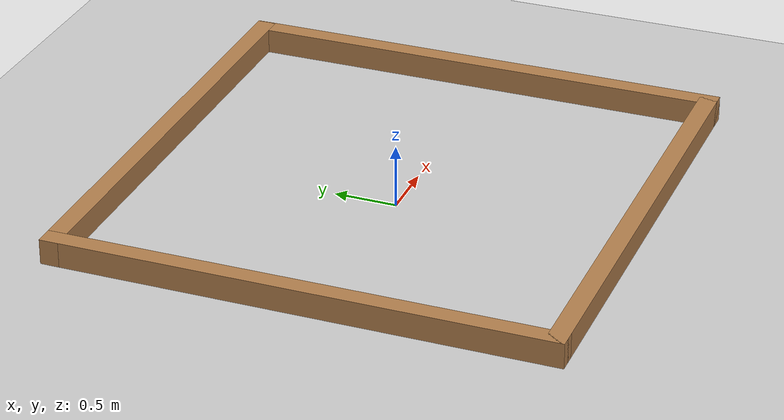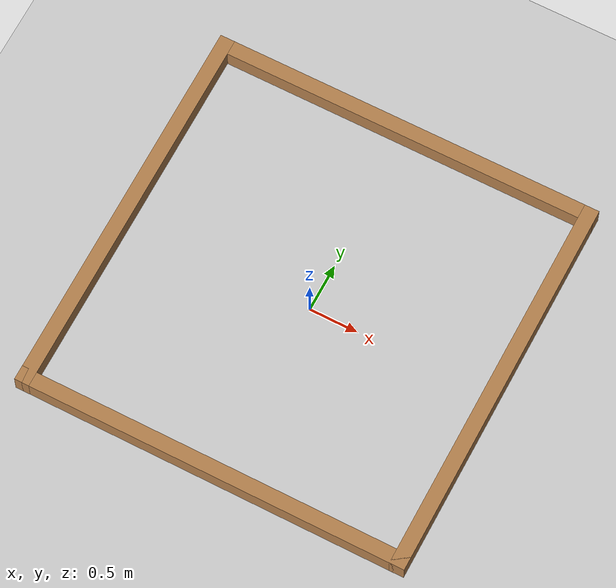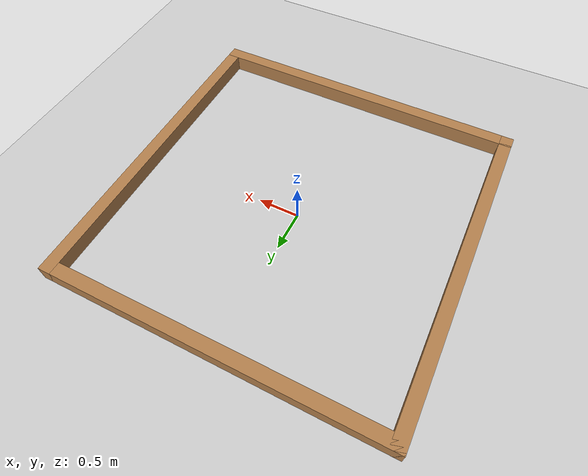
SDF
<sdf version='1.4'>
  <world name='default'>

    <!-- A global light source -->
    <include>
      <uri>model://sun</uri>
    </include>

    <!-- A ground plane -->
    <include>
      <uri>model://ground_plane</uri>
    </include>

    <include>
      <name> turtlebot3_square </name>
      <uri>model://turtlebot3_square</uri>
      <pose>0 0 0 0 0 0</pose>
    </include>

    <scene>
      <ambient>0.4 0.4 0.4 1</ambient>
      <background>0.7 0.7 0.7 1</background>
      <shadows>true</shadows>
    </scene>

    <gui fullscreen='0'>
      <camera name='user_camera'>
        <pose>0.8 0.0 12.0 0 1.5708 0</pose>
        <view_controller>orbit</view_controller>
      </camera>
    </gui>

  </world>
</sdf>

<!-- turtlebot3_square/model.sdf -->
<sdf version='1.6'>
  <model name='turtlebot3_square'>
    <pose frame=''>0 0 0 0 -0 0</pose>

    <link name='Wall_0'>
      <collision name='Wall_0_Collision'>
        <geometry>
          <box>
            <size>4 0.15 0.2</size>
          </box>
        </geometry>
        <pose frame=''>0 0 0.25 0 -0 0</pose>
      </collision>
      <visual name='Wall_0_Visual'>
        <pose frame=''>0 0 0.25 0 -0 0</pose>
        <geometry>
          <box>
            <size>4 0.15 0.2</size>
          </box>
        </geometry>
        <material>
          <script>
            <uri>models://materials/scripts/square.material</uri>
            <name>Gazebo/Wood</name>
          </script>
          <ambient>1 1 1 1</ambient>
        </material>
      </visual>
      <pose frame=''>0 1.925 0 0 -0 0</pose>
    </link>

    <link name='Wall_2'>
      <collision name='Wall_2_Collision'>
        <geometry>
          <box>
            <size>4 0.15 0.2</size>
          </box>
        </geometry>
        <pose frame=''>0 0 0.25 0 -0 0</pose>
      </collision>
      <visual name='Wall_2_Visual'>
        <pose frame=''>0 0 0.25 0 -0 0</pose>
        <geometry>
          <box>
            <size>4 0.15 0.2</size>
          </box>
        </geometry>
        <material>
          <script>
            <uri>models://materials/scripts/square.material</uri>
            <name>Gazebo/Wood</name>
          </script>
          <ambient>1 1 1 1</ambient>
        </material>
      </visual>
      <pose frame=''>-1.925 0 0 0 0 -1.5708</pose>
    </link>

    <link name='Wall_3'>
      <collision name='Wall_3_Collision'>
        <geometry>
          <box>
            <size>4 0.15 0.2</size>
          </box>
        </geometry>
        <pose frame=''>0 0 0.25 0 -0 0</pose>
      </collision>
      <visual name='Wall_3_Visual'>
        <pose frame=''>0 0 0.25 0 -0 0</pose>
        <geometry>
          <box>
            <size>4 0.15 0.2</size>
          </box>
        </geometry>
        <material>
          <script>
            <uri>models://materials/scripts/square.material</uri>
            <name>Gazebo/Wood</name>
          </script>
          <ambient>1 1 1 1</ambient>
        </material>
      </visual>
      <pose frame=''>0 -1.925 0 0 -0 0</pose>
    </link>

    <link name='Wall_4'>
      <collision name='Wall_4_Collision'>
        <geometry>
          <box>
            <size>4 0.15 0.2</size>
          </box>
        </geometry>
        <pose frame=''>0 0 0.25 0 -0 0</pose>
      </collision>
      <visual name='Wall_4_Visual'>
        <pose frame=''>0 0 0.25 0 -0 0</pose>
        <geometry>
          <box>
            <size>4 0.15 0.2</size>
          </box>
        </geometry>
        <material>
          <script>
            <uri>models://materials/scripts/square.material</uri>
            <name>Gazebo/Wood</name>
          </script>
          <ambient>1 1 1 1</ambient>
        </material>
      </visual>
      <pose frame=''>1.925 0 0 0 -0 1.5708</pose>
    </link>
    <static>1</static>
  </model>
</sdf>
